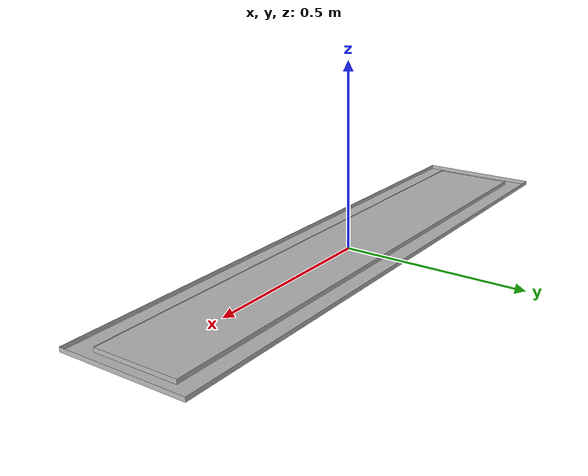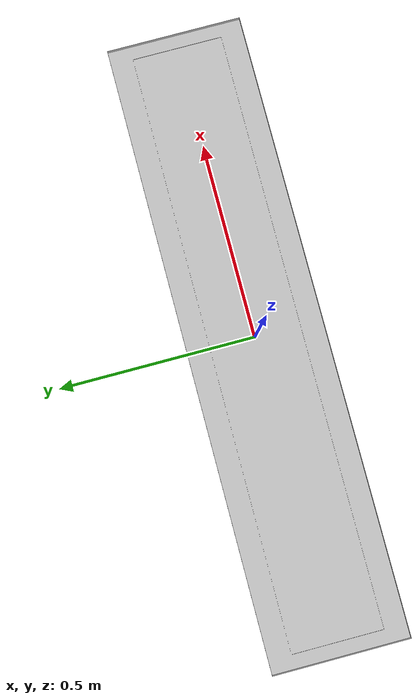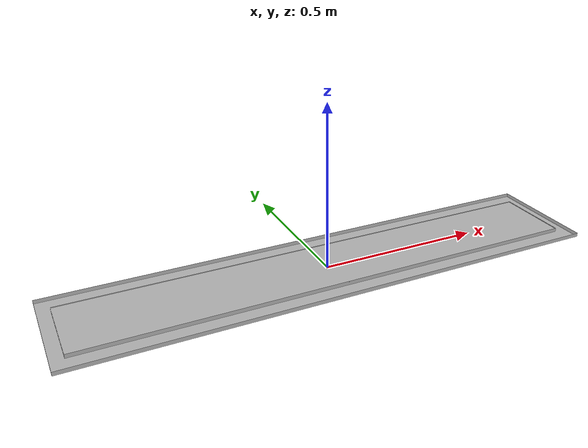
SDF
<?xml version="1.0" ?>
<sdf version="1.6">
  <model name="aws_robomaker_retail_AirConditionerC_01">
    <link name="link">
      <inertial>
        <mass>50</mass>
      </inertial>
      <collision name="collision">
        <geometry>
          <mesh>
            <uri>file://models/aws_robomaker_retail_AirConditionerC_01/meshes/aws_AirConditionerC_01_collision.DAE</uri>
            <scale>1 1 1</scale>
          </mesh>
        </geometry>
      </collision>
      <visual name="visual">
	    <geometry>
          <mesh>
            <uri>file://models/aws_robomaker_retail_AirConditionerC_01/meshes/aws_AirConditionerC_01_visual.DAE</uri>
          </mesh>
        </geometry>
        <meta>
          <layer>3</layer>
        </meta>
      </visual>
    </link>
    <static>1</static>
  </model>
</sdf>
